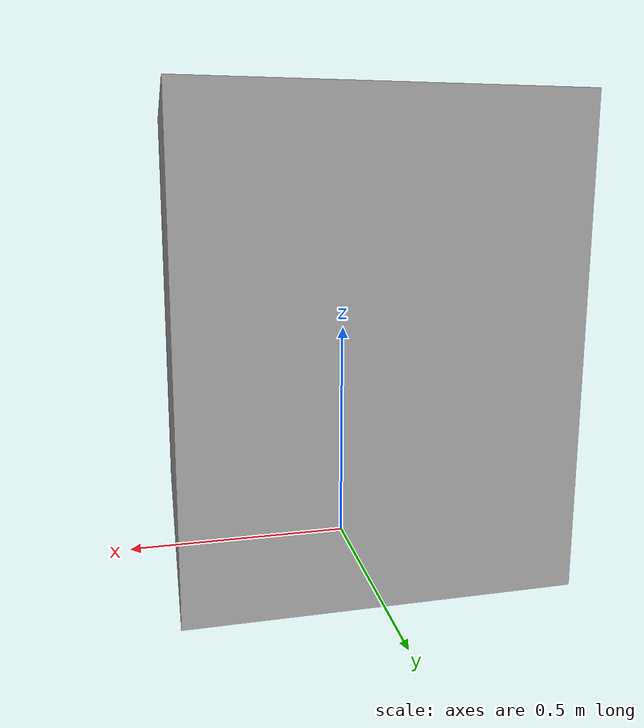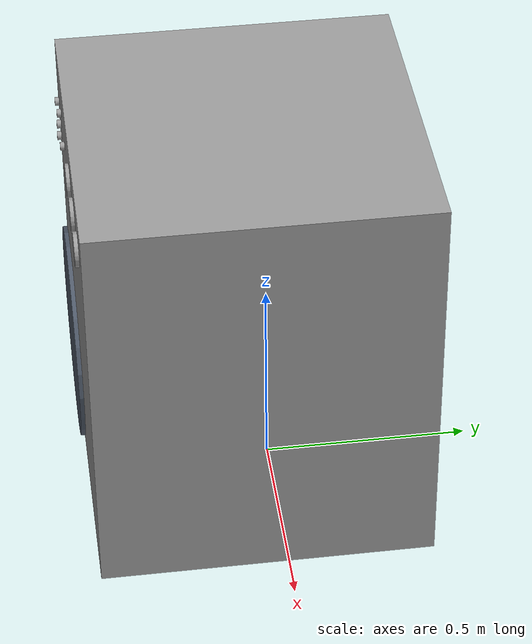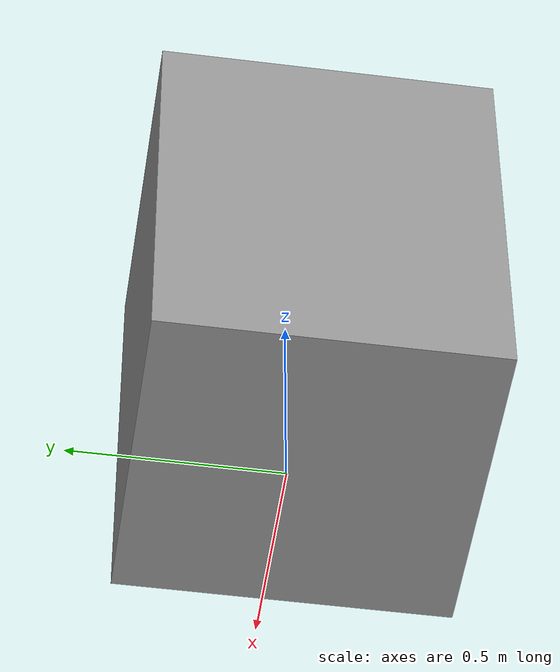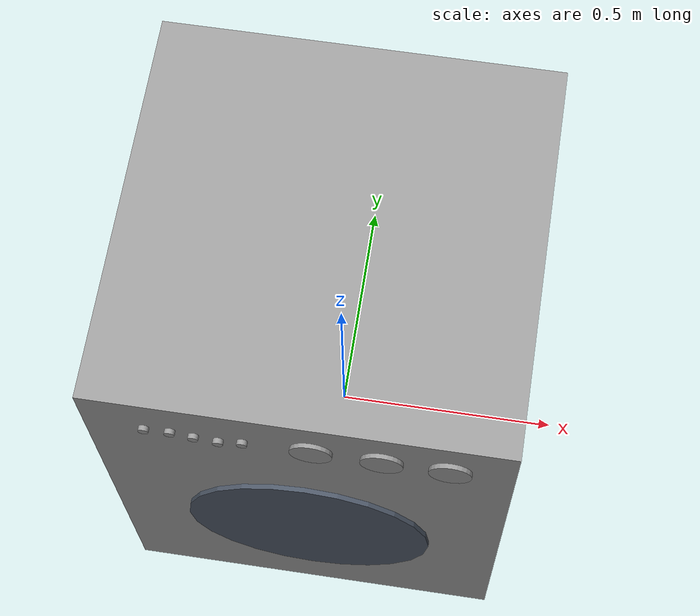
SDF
<?xml version='1.0'?>
<sdf version='1.7'>
  <model name='my_washing_machine'>
    <link name='link'>
      <inertial>
        <mass>1</mass>
        <inertia>
          <ixx>0.166667</ixx>
          <ixy>0</ixy>
          <ixz>0</ixz>
          <iyy>0.166667</iyy>
          <iyz>0</iyz>
          <izz>0.166667</izz>
        </inertia>
        <pose>0 0 0 0 -0 0</pose>
      </inertial>
      <self_collide>0</self_collide>
      <enable_wind>0</enable_wind>
      <kinematic>0</kinematic>
      <pose>-0.002708 -0.04821 0 0 -0 0</pose>
      <gravity>1</gravity>
      <visual name='visual'>
        <geometry>
          <box>
            <size>0.8 0.8 1</size>
          </box>
        </geometry>
        <material>
          <script>
            <name>Gazebo/Grey</name>
            <uri>file://media/materials/scripts/gazebo.material</uri>
          </script>
          <shader type='pixel'>
            <normal_map>__default__</normal_map>
          </shader>
          <ambient>0.9 0.9 0.9 0</ambient>
          <diffuse>0.9 0.9 0.9 1</diffuse>
          <specular>0.01 0.01 0.01 1</specular>
          <emissive>0 0 0 1</emissive>
        </material>
        <pose>0 0 0.5 0 -0 0</pose>
        <transparency>0</transparency>
        <cast_shadows>1</cast_shadows>
      </visual>
      <collision name='collision'>
        <laser_retro>0</laser_retro>
        <max_contacts>10</max_contacts>
        <pose>0 0 0.5 0 -0 0</pose>
        <geometry>
          <box>
            <size>0.8 0.8 1</size>
          </box>
        </geometry>
        <surface>
          <friction>
            <ode>
              <mu>1</mu>
              <mu2>1</mu2>
              <fdir1>0 0 0</fdir1>
              <slip1>0</slip1>
              <slip2>0</slip2>
            </ode>
            <torsional>
              <coefficient>1</coefficient>
              <patch_radius>0</patch_radius>
              <surface_radius>0</surface_radius>
              <use_patch_radius>1</use_patch_radius>
              <ode>
                <slip>0</slip>
              </ode>
            </torsional>
          </friction>
          <bounce>
            <restitution_coefficient>0</restitution_coefficient>
            <threshold>1e+06</threshold>
          </bounce>
          <contact>
            <collide_without_contact>0</collide_without_contact>
            <collide_without_contact_bitmask>1</collide_without_contact_bitmask>
            <collide_bitmask>1</collide_bitmask>
            <ode>
              <soft_cfm>0</soft_cfm>
              <soft_erp>0.2</soft_erp>
              <kp>1e+13</kp>
              <kd>1</kd>
              <max_vel>0.01</max_vel>
              <min_depth>0</min_depth>
            </ode>
            <bullet>
              <split_impulse>1</split_impulse>
              <split_impulse_penetration_threshold>-0.01</split_impulse_penetration_threshold>
              <soft_cfm>0</soft_cfm>
              <soft_erp>0.2</soft_erp>
              <kp>1e+13</kp>
              <kd>1</kd>
            </bullet>
          </contact>
        </surface>
      </collision>
    </link>
    <link name='link_0'>
      <inertial>
        <mass>1</mass>
        <inertia>
          <ixx>0.145833</ixx>
          <ixy>0</ixy>
          <ixz>0</ixz>
          <iyy>0.145833</iyy>
          <iyz>0</iyz>
          <izz>0.125</izz>
        </inertia>
        <pose>0 0 0 0 -0 0</pose>
      </inertial>
      <pose>0.004091 -0.46144 0.442681 0 -0 0</pose>
      <gravity>1</gravity>
      <self_collide>0</self_collide>
      <kinematic>0</kinematic>
      <enable_wind>0</enable_wind>
      <visual name='visual'>
        <pose>0 0 0 1.5707 -0 0</pose>
        <geometry>
          <cylinder>
            <radius>0.25</radius>
            <length>0.01</length>
          </cylinder>
        </geometry>
        <material>
          <lighting>1</lighting>
          <script>
            <uri>file://media/materials/scripts/gazebo.material</uri>
            <name>Gazebo/Grey</name>
          </script>
          <shader type='pixel'>
            <normal_map>__default__</normal_map>
          </shader>
          <ambient>0.3 0.34 0.4 1</ambient>
          <diffuse>0.3 0.34 0.4 1</diffuse>
          <specular>0.01 0.01 0.01 1</specular>
          <emissive>0 0 0 1</emissive>
        </material>
        <transparency>0</transparency>
        <cast_shadows>1</cast_shadows>
      </visual>
      <collision name='collision'>
        <laser_retro>0</laser_retro>
        <max_contacts>10</max_contacts>
        <pose>0 0 0 1.5707 -0 0</pose>
        <geometry>
          <cylinder>
            <radius>0.25</radius>
            <length>0.01</length>
          </cylinder>
        </geometry>
        <surface>
          <friction>
            <ode>
              <mu>1</mu>
              <mu2>1</mu2>
              <fdir1>0 0 0</fdir1>
              <slip1>0</slip1>
              <slip2>0</slip2>
            </ode>
            <torsional>
              <coefficient>1</coefficient>
              <patch_radius>0</patch_radius>
              <surface_radius>0</surface_radius>
              <use_patch_radius>1</use_patch_radius>
              <ode>
                <slip>0</slip>
              </ode>
            </torsional>
          </friction>
          <bounce>
            <restitution_coefficient>0</restitution_coefficient>
            <threshold>1e+06</threshold>
          </bounce>
          <contact>
            <collide_without_contact>0</collide_without_contact>
            <collide_without_contact_bitmask>1</collide_without_contact_bitmask>
            <collide_bitmask>1</collide_bitmask>
            <ode>
              <soft_cfm>0</soft_cfm>
              <soft_erp>0.2</soft_erp>
              <kp>1e+13</kp>
              <kd>1</kd>
              <max_vel>0.01</max_vel>
              <min_depth>0</min_depth>
            </ode>
            <bullet>
              <split_impulse>1</split_impulse>
              <split_impulse_penetration_threshold>-0.01</split_impulse_penetration_threshold>
              <soft_cfm>0</soft_cfm>
              <soft_erp>0.2</soft_erp>
              <kp>1e+13</kp>
              <kd>1</kd>
            </bullet>
          </contact>
        </surface>
      </collision>
    </link>
    <link name='link_0_clone'>
      <inertial>
        <mass>1</mass>
        <inertia>
          <ixx>0.145833</ixx>
          <ixy>0</ixy>
          <ixz>0</ixz>
          <iyy>0.145833</iyy>
          <iyz>0</iyz>
          <izz>0.125</izz>
        </inertia>
        <pose>0 0 0 0 -0 0</pose>
      </inertial>
      <pose>0.277824 -0.452536 0.894004 0 -0 0</pose>
      <gravity>1</gravity>
      <self_collide>0</self_collide>
      <kinematic>0</kinematic>
      <enable_wind>0</enable_wind>
      <visual name='visual'>
        <pose>0 0 0 1.5707 -0 0</pose>
        <geometry>
          <cylinder>
            <radius>0.04</radius>
            <length>0.01</length>
          </cylinder>
        </geometry>
        <material>
          <lighting>1</lighting>
          <script>
            <uri>file://media/materials/scripts/gazebo.material</uri>
            <name>Gazebo/Grey</name>
          </script>
          <shader type='pixel'>
            <normal_map>__default__</normal_map>
          </shader>
          <ambient>0.8 0.8 0.8 1</ambient>
          <diffuse>0.8 0.8 0.8 1</diffuse>
          <specular>0.01 0.01 0.01 1</specular>
          <emissive>0 0 0 1</emissive>
        </material>
        <transparency>0</transparency>
        <cast_shadows>1</cast_shadows>
      </visual>
      <collision name='collision'>
        <laser_retro>0</laser_retro>
        <max_contacts>10</max_contacts>
        <pose>0 0 0 1.5707 -0 0</pose>
        <geometry>
          <cylinder>
            <radius>0.04</radius>
            <length>0.01</length>
          </cylinder>
        </geometry>
        <surface>
          <friction>
            <ode>
              <mu>1</mu>
              <mu2>1</mu2>
              <fdir1>0 0 0</fdir1>
              <slip1>0</slip1>
              <slip2>0</slip2>
            </ode>
            <torsional>
              <coefficient>1</coefficient>
              <patch_radius>0</patch_radius>
              <surface_radius>0</surface_radius>
              <use_patch_radius>1</use_patch_radius>
              <ode>
                <slip>0</slip>
              </ode>
            </torsional>
          </friction>
          <bounce>
            <restitution_coefficient>0</restitution_coefficient>
            <threshold>1e+06</threshold>
          </bounce>
          <contact>
            <collide_without_contact>0</collide_without_contact>
            <collide_without_contact_bitmask>1</collide_without_contact_bitmask>
            <collide_bitmask>1</collide_bitmask>
            <ode>
              <soft_cfm>0</soft_cfm>
              <soft_erp>0.2</soft_erp>
              <kp>1e+13</kp>
              <kd>1</kd>
              <max_vel>0.01</max_vel>
              <min_depth>0</min_depth>
            </ode>
            <bullet>
              <split_impulse>1</split_impulse>
              <split_impulse_penetration_threshold>-0.01</split_impulse_penetration_threshold>
              <soft_cfm>0</soft_cfm>
              <soft_erp>0.2</soft_erp>
              <kp>1e+13</kp>
              <kd>1</kd>
            </bullet>
          </contact>
        </surface>
      </collision>
    </link>
    <link name='link_0_clone_clone'>
      <inertial>
        <mass>1</mass>
        <inertia>
          <ixx>0.145833</ixx>
          <ixy>0</ixy>
          <ixz>0</ixz>
          <iyy>0.145833</iyy>
          <iyz>0</iyz>
          <izz>0.125</izz>
        </inertia>
        <pose>0 0 0 0 -0 0</pose>
      </inertial>
      <pose>0.152191 -0.452057 0.894004 0 -0 0</pose>
      <gravity>1</gravity>
      <self_collide>0</self_collide>
      <kinematic>0</kinematic>
      <enable_wind>0</enable_wind>
      <visual name='visual'>
        <pose>0 0 0 1.5707 -0 0</pose>
        <geometry>
          <cylinder>
            <radius>0.04</radius>
            <length>0.01</length>
          </cylinder>
        </geometry>
        <material>
          <lighting>1</lighting>
          <script>
            <uri>file://media/materials/scripts/gazebo.material</uri>
            <name>Gazebo/Grey</name>
          </script>
          <shader type='pixel'>
            <normal_map>__default__</normal_map>
          </shader>
          <ambient>0.8 0.8 0.8 1</ambient>
          <diffuse>0.8 0.8 0.8 1</diffuse>
          <specular>0.01 0.01 0.01 1</specular>
          <emissive>0 0 0 1</emissive>
        </material>
        <transparency>0</transparency>
        <cast_shadows>1</cast_shadows>
      </visual>
      <collision name='collision'>
        <laser_retro>0</laser_retro>
        <max_contacts>10</max_contacts>
        <pose>0 0 0 1.5707 -0 0</pose>
        <geometry>
          <cylinder>
            <radius>0.04</radius>
            <length>0.01</length>
          </cylinder>
        </geometry>
        <surface>
          <friction>
            <ode>
              <mu>1</mu>
              <mu2>1</mu2>
              <fdir1>0 0 0</fdir1>
              <slip1>0</slip1>
              <slip2>0</slip2>
            </ode>
            <torsional>
              <coefficient>1</coefficient>
              <patch_radius>0</patch_radius>
              <surface_radius>0</surface_radius>
              <use_patch_radius>1</use_patch_radius>
              <ode>
                <slip>0</slip>
              </ode>
            </torsional>
          </friction>
          <bounce>
            <restitution_coefficient>0</restitution_coefficient>
            <threshold>1e+06</threshold>
          </bounce>
          <contact>
            <collide_without_contact>0</collide_without_contact>
            <collide_without_contact_bitmask>1</collide_without_contact_bitmask>
            <collide_bitmask>1</collide_bitmask>
            <ode>
              <soft_cfm>0</soft_cfm>
              <soft_erp>0.2</soft_erp>
              <kp>1e+13</kp>
              <kd>1</kd>
              <max_vel>0.01</max_vel>
              <min_depth>0</min_depth>
            </ode>
            <bullet>
              <split_impulse>1</split_impulse>
              <split_impulse_penetration_threshold>-0.01</split_impulse_penetration_threshold>
              <soft_cfm>0</soft_cfm>
              <soft_erp>0.2</soft_erp>
              <kp>1e+13</kp>
              <kd>1</kd>
            </bullet>
          </contact>
        </surface>
      </collision>
    </link>
    <link name='link_0_clone_clone_0'>
      <inertial>
        <mass>1</mass>
        <inertia>
          <ixx>0.145833</ixx>
          <ixy>0</ixy>
          <ixz>0</ixz>
          <iyy>0.145833</iyy>
          <iyz>0</iyz>
          <izz>0.125</izz>
        </inertia>
        <pose>0 0 0 0 -0 0</pose>
      </inertial>
      <pose>0.021824 -0.451823 0.894004 0 -0 0</pose>
      <gravity>1</gravity>
      <self_collide>0</self_collide>
      <kinematic>0</kinematic>
      <enable_wind>0</enable_wind>
      <visual name='visual'>
        <pose>0 0 0 1.5707 -0 0</pose>
        <geometry>
          <cylinder>
            <radius>0.04</radius>
            <length>0.01</length>
          </cylinder>
        </geometry>
        <material>
          <lighting>1</lighting>
          <script>
            <uri>file://media/materials/scripts/gazebo.material</uri>
            <name>Gazebo/Grey</name>
          </script>
          <shader type='pixel'>
            <normal_map>__default__</normal_map>
          </shader>
          <ambient>0.8 0.8 0.8 1</ambient>
          <diffuse>0.8 0.8 0.8 1</diffuse>
          <specular>0.01 0.01 0.01 1</specular>
          <emissive>0 0 0 1</emissive>
        </material>
        <transparency>0</transparency>
        <cast_shadows>1</cast_shadows>
      </visual>
      <collision name='collision'>
        <laser_retro>0</laser_retro>
        <max_contacts>10</max_contacts>
        <pose>0 0 0 1.5707 -0 0</pose>
        <geometry>
          <cylinder>
            <radius>0.04</radius>
            <length>0.01</length>
          </cylinder>
        </geometry>
        <surface>
          <friction>
            <ode>
              <mu>1</mu>
              <mu2>1</mu2>
              <fdir1>0 0 0</fdir1>
              <slip1>0</slip1>
              <slip2>0</slip2>
            </ode>
            <torsional>
              <coefficient>1</coefficient>
              <patch_radius>0</patch_radius>
              <surface_radius>0</surface_radius>
              <use_patch_radius>1</use_patch_radius>
              <ode>
                <slip>0</slip>
              </ode>
            </torsional>
          </friction>
          <bounce>
            <restitution_coefficient>0</restitution_coefficient>
            <threshold>1e+06</threshold>
          </bounce>
          <contact>
            <collide_without_contact>0</collide_without_contact>
            <collide_without_contact_bitmask>1</collide_without_contact_bitmask>
            <collide_bitmask>1</collide_bitmask>
            <ode>
              <soft_cfm>0</soft_cfm>
              <soft_erp>0.2</soft_erp>
              <kp>1e+13</kp>
              <kd>1</kd>
              <max_vel>0.01</max_vel>
              <min_depth>0</min_depth>
            </ode>
            <bullet>
              <split_impulse>1</split_impulse>
              <split_impulse_penetration_threshold>-0.01</split_impulse_penetration_threshold>
              <soft_cfm>0</soft_cfm>
              <soft_erp>0.2</soft_erp>
              <kp>1e+13</kp>
              <kd>1</kd>
            </bullet>
          </contact>
        </surface>
      </collision>
    </link>
    <link name='link_0_clone_clone_0_clone'>
      <inertial>
        <mass>1</mass>
        <inertia>
          <ixx>0.145833</ixx>
          <ixy>0</ixy>
          <ixz>0</ixz>
          <iyy>0.145833</iyy>
          <iyz>0</iyz>
          <izz>0.125</izz>
        </inertia>
        <pose>0 0 0 0 -0 0</pose>
      </inertial>
      <pose>-0.14749 -0.45922 0.90143 0 -0 0</pose>
      <gravity>1</gravity>
      <self_collide>0</self_collide>
      <kinematic>0</kinematic>
      <enable_wind>0</enable_wind>
      <visual name='visual'>
        <pose>0 0 0 1.5707 -0 0</pose>
        <geometry>
          <cylinder>
            <radius>0.01</radius>
            <length>0.01</length>
          </cylinder>
        </geometry>
        <material>
          <lighting>1</lighting>
          <script>
            <uri>file://media/materials/scripts/gazebo.material</uri>
            <name>Gazebo/Grey</name>
          </script>
          <shader type='pixel'>
            <normal_map>__default__</normal_map>
          </shader>
          <ambient>0.8 0.8 0.8 1</ambient>
          <diffuse>0.8 0.8 0.8 1</diffuse>
          <specular>0.01 0.01 0.01 1</specular>
          <emissive>0 0 0 1</emissive>
        </material>
        <transparency>0</transparency>
        <cast_shadows>1</cast_shadows>
      </visual>
      <collision name='collision'>
        <laser_retro>0</laser_retro>
        <max_contacts>10</max_contacts>
        <pose>0 0 0 1.5707 -0 0</pose>
        <geometry>
          <cylinder>
            <radius>0.01</radius>
            <length>0.01</length>
          </cylinder>
        </geometry>
        <surface>
          <friction>
            <ode>
              <mu>1</mu>
              <mu2>1</mu2>
              <fdir1>0 0 0</fdir1>
              <slip1>0</slip1>
              <slip2>0</slip2>
            </ode>
            <torsional>
              <coefficient>1</coefficient>
              <patch_radius>0</patch_radius>
              <surface_radius>0</surface_radius>
              <use_patch_radius>1</use_patch_radius>
              <ode>
                <slip>0</slip>
              </ode>
            </torsional>
          </friction>
          <bounce>
            <restitution_coefficient>0</restitution_coefficient>
            <threshold>1e+06</threshold>
          </bounce>
          <contact>
            <collide_without_contact>0</collide_without_contact>
            <collide_without_contact_bitmask>1</collide_without_contact_bitmask>
            <collide_bitmask>1</collide_bitmask>
            <ode>
              <soft_cfm>0</soft_cfm>
              <soft_erp>0.2</soft_erp>
              <kp>1e+13</kp>
              <kd>1</kd>
              <max_vel>0.01</max_vel>
              <min_depth>0</min_depth>
            </ode>
            <bullet>
              <split_impulse>1</split_impulse>
              <split_impulse_penetration_threshold>-0.01</split_impulse_penetration_threshold>
              <soft_cfm>0</soft_cfm>
              <soft_erp>0.2</soft_erp>
              <kp>1e+13</kp>
              <kd>1</kd>
            </bullet>
          </contact>
        </surface>
      </collision>
    </link>
    <link name='link_0_clone_clone_0_clone_clone'>
      <inertial>
        <mass>1</mass>
        <inertia>
          <ixx>0.145833</ixx>
          <ixy>0</ixy>
          <ixz>0</ixz>
          <iyy>0.145833</iyy>
          <iyz>0</iyz>
          <izz>0.125</izz>
        </inertia>
        <pose>0 0 0 0 -0 0</pose>
      </inertial>
      <pose>-0.193775 -0.457102 0.90143 0 -0 0</pose>
      <gravity>1</gravity>
      <self_collide>0</self_collide>
      <kinematic>0</kinematic>
      <enable_wind>0</enable_wind>
      <visual name='visual'>
        <pose>0 0 0 1.5707 -0 0</pose>
        <geometry>
          <cylinder>
            <radius>0.01</radius>
            <length>0.01</length>
          </cylinder>
        </geometry>
        <material>
          <lighting>1</lighting>
          <script>
            <uri>file://media/materials/scripts/gazebo.material</uri>
            <name>Gazebo/Grey</name>
          </script>
          <shader type='pixel'>
            <normal_map>__default__</normal_map>
          </shader>
          <ambient>0.8 0.8 0.8 1</ambient>
          <diffuse>0.8 0.8 0.8 1</diffuse>
          <specular>0.01 0.01 0.01 1</specular>
          <emissive>0 0 0 1</emissive>
        </material>
        <transparency>0</transparency>
        <cast_shadows>1</cast_shadows>
      </visual>
      <collision name='collision'>
        <laser_retro>0</laser_retro>
        <max_contacts>10</max_contacts>
        <pose>0 0 0 1.5707 -0 0</pose>
        <geometry>
          <cylinder>
            <radius>0.01</radius>
            <length>0.01</length>
          </cylinder>
        </geometry>
        <surface>
          <friction>
            <ode>
              <mu>1</mu>
              <mu2>1</mu2>
              <fdir1>0 0 0</fdir1>
              <slip1>0</slip1>
              <slip2>0</slip2>
            </ode>
            <torsional>
              <coefficient>1</coefficient>
              <patch_radius>0</patch_radius>
              <surface_radius>0</surface_radius>
              <use_patch_radius>1</use_patch_radius>
              <ode>
                <slip>0</slip>
              </ode>
            </torsional>
          </friction>
          <bounce>
            <restitution_coefficient>0</restitution_coefficient>
            <threshold>1e+06</threshold>
          </bounce>
          <contact>
            <collide_without_contact>0</collide_without_contact>
            <collide_without_contact_bitmask>1</collide_without_contact_bitmask>
            <collide_bitmask>1</collide_bitmask>
            <ode>
              <soft_cfm>0</soft_cfm>
              <soft_erp>0.2</soft_erp>
              <kp>1e+13</kp>
              <kd>1</kd>
              <max_vel>0.01</max_vel>
              <min_depth>0</min_depth>
            </ode>
            <bullet>
              <split_impulse>1</split_impulse>
              <split_impulse_penetration_threshold>-0.01</split_impulse_penetration_threshold>
              <soft_cfm>0</soft_cfm>
              <soft_erp>0.2</soft_erp>
              <kp>1e+13</kp>
              <kd>1</kd>
            </bullet>
          </contact>
        </surface>
      </collision>
    </link>
    <link name='link_0_clone_clone_0_clone_clone_clone'>
      <inertial>
        <mass>1</mass>
        <inertia>
          <ixx>0.145833</ixx>
          <ixy>0</ixy>
          <ixz>0</ixz>
          <iyy>0.145833</iyy>
          <iyz>0</iyz>
          <izz>0.125</izz>
        </inertia>
        <pose>0 0 0 0 -0 0</pose>
      </inertial>
      <pose>-0.238107 -0.454271 0.90143 0 -0 0</pose>
      <gravity>1</gravity>
      <self_collide>0</self_collide>
      <kinematic>0</kinematic>
      <enable_wind>0</enable_wind>
      <visual name='visual'>
        <pose>0 0 0 1.5707 -0 0</pose>
        <geometry>
          <cylinder>
            <radius>0.01</radius>
            <length>0.01</length>
          </cylinder>
        </geometry>
        <material>
          <lighting>1</lighting>
          <script>
            <uri>file://media/materials/scripts/gazebo.material</uri>
            <name>Gazebo/Grey</name>
          </script>
          <shader type='pixel'>
            <normal_map>__default__</normal_map>
          </shader>
          <ambient>0.8 0.8 0.8 1</ambient>
          <diffuse>0.8 0.8 0.8 1</diffuse>
          <specular>0.01 0.01 0.01 1</specular>
          <emissive>0 0 0 1</emissive>
        </material>
        <transparency>0</transparency>
        <cast_shadows>1</cast_shadows>
      </visual>
      <collision name='collision'>
        <laser_retro>0</laser_retro>
        <max_contacts>10</max_contacts>
        <pose>0 0 0 1.5707 -0 0</pose>
        <geometry>
          <cylinder>
            <radius>0.01</radius>
            <length>0.01</length>
          </cylinder>
        </geometry>
        <surface>
          <friction>
            <ode>
              <mu>1</mu>
              <mu2>1</mu2>
              <fdir1>0 0 0</fdir1>
              <slip1>0</slip1>
              <slip2>0</slip2>
            </ode>
            <torsional>
              <coefficient>1</coefficient>
              <patch_radius>0</patch_radius>
              <surface_radius>0</surface_radius>
              <use_patch_radius>1</use_patch_radius>
              <ode>
                <slip>0</slip>
              </ode>
            </torsional>
          </friction>
          <bounce>
            <restitution_coefficient>0</restitution_coefficient>
            <threshold>1e+06</threshold>
          </bounce>
          <contact>
            <collide_without_contact>0</collide_without_contact>
            <collide_without_contact_bitmask>1</collide_without_contact_bitmask>
            <collide_bitmask>1</collide_bitmask>
            <ode>
              <soft_cfm>0</soft_cfm>
              <soft_erp>0.2</soft_erp>
              <kp>1e+13</kp>
              <kd>1</kd>
              <max_vel>0.01</max_vel>
              <min_depth>0</min_depth>
            </ode>
            <bullet>
              <split_impulse>1</split_impulse>
              <split_impulse_penetration_threshold>-0.01</split_impulse_penetration_threshold>
              <soft_cfm>0</soft_cfm>
              <soft_erp>0.2</soft_erp>
              <kp>1e+13</kp>
              <kd>1</kd>
            </bullet>
          </contact>
        </surface>
      </collision>
    </link>
    <link name='link_0_clone_clone_0_clone_clone_clone_clone'>
      <inertial>
        <mass>1</mass>
        <inertia>
          <ixx>0.145833</ixx>
          <ixy>0</ixy>
          <ixz>0</ixz>
          <iyy>0.145833</iyy>
          <iyz>0</iyz>
          <izz>0.125</izz>
        </inertia>
        <pose>0 0 0 0 -0 0</pose>
      </inertial>
      <pose>-0.286219 -0.455562 0.902135 0 -0 0</pose>
      <gravity>1</gravity>
      <self_collide>0</self_collide>
      <kinematic>0</kinematic>
      <enable_wind>0</enable_wind>
      <visual name='visual'>
        <pose>0 0 0 1.5707 -0 0</pose>
        <geometry>
          <cylinder>
            <radius>0.01</radius>
            <length>0.01</length>
          </cylinder>
        </geometry>
        <material>
          <lighting>1</lighting>
          <script>
            <uri>file://media/materials/scripts/gazebo.material</uri>
            <name>Gazebo/Grey</name>
          </script>
          <shader type='pixel'>
            <normal_map>__default__</normal_map>
          </shader>
          <ambient>0.8 0.8 0.8 1</ambient>
          <diffuse>0.8 0.8 0.8 1</diffuse>
          <specular>0.01 0.01 0.01 1</specular>
          <emissive>0 0 0 1</emissive>
        </material>
        <transparency>0</transparency>
        <cast_shadows>1</cast_shadows>
      </visual>
      <collision name='collision'>
        <laser_retro>0</laser_retro>
        <max_contacts>10</max_contacts>
        <pose>0 0 0 1.5707 -0 0</pose>
        <geometry>
          <cylinder>
            <radius>0.01</radius>
            <length>0.01</length>
          </cylinder>
        </geometry>
        <surface>
          <friction>
            <ode>
              <mu>1</mu>
              <mu2>1</mu2>
              <fdir1>0 0 0</fdir1>
              <slip1>0</slip1>
              <slip2>0</slip2>
            </ode>
            <torsional>
              <coefficient>1</coefficient>
              <patch_radius>0</patch_radius>
              <surface_radius>0</surface_radius>
              <use_patch_radius>1</use_patch_radius>
              <ode>
                <slip>0</slip>
              </ode>
            </torsional>
          </friction>
          <bounce>
            <restitution_coefficient>0</restitution_coefficient>
            <threshold>1e+06</threshold>
          </bounce>
          <contact>
            <collide_without_contact>0</collide_without_contact>
            <collide_without_contact_bitmask>1</collide_without_contact_bitmask>
            <collide_bitmask>1</collide_bitmask>
            <ode>
              <soft_cfm>0</soft_cfm>
              <soft_erp>0.2</soft_erp>
              <kp>1e+13</kp>
              <kd>1</kd>
              <max_vel>0.01</max_vel>
              <min_depth>0</min_depth>
            </ode>
            <bullet>
              <split_impulse>1</split_impulse>
              <split_impulse_penetration_threshold>-0.01</split_impulse_penetration_threshold>
              <soft_cfm>0</soft_cfm>
              <soft_erp>0.2</soft_erp>
              <kp>1e+13</kp>
              <kd>1</kd>
            </bullet>
          </contact>
        </surface>
      </collision>
    </link>
    <link name='link_0_clone_clone_0_clone_clone_clone_clone_0'>
      <inertial>
        <mass>1</mass>
        <inertia>
          <ixx>0.145833</ixx>
          <ixy>0</ixy>
          <ixz>0</ixz>
          <iyy>0.145833</iyy>
          <iyz>0</iyz>
          <izz>0.125</izz>
        </inertia>
        <pose>0 0 0 0 -0 0</pose>
      </inertial>
      <pose>-0.103977 -0.455433 0.90143 0 -0 0</pose>
      <gravity>1</gravity>
      <self_collide>0</self_collide>
      <kinematic>0</kinematic>
      <enable_wind>0</enable_wind>
      <visual name='visual'>
        <pose>0 0 0 1.5707 -0 0</pose>
        <geometry>
          <cylinder>
            <radius>0.01</radius>
            <length>0.01</length>
          </cylinder>
        </geometry>
        <material>
          <lighting>1</lighting>
          <script>
            <uri>file://media/materials/scripts/gazebo.material</uri>
            <name>Gazebo/Grey</name>
          </script>
          <shader type='pixel'>
            <normal_map>__default__</normal_map>
          </shader>
          <ambient>0.8 0.8 0.8 1</ambient>
          <diffuse>0.8 0.8 0.8 1</diffuse>
          <specular>0.01 0.01 0.01 1</specular>
          <emissive>0 0 0 1</emissive>
        </material>
        <transparency>0</transparency>
        <cast_shadows>1</cast_shadows>
      </visual>
      <collision name='collision'>
        <laser_retro>0</laser_retro>
        <max_contacts>10</max_contacts>
        <pose>0 0 0 1.5707 -0 0</pose>
        <geometry>
          <cylinder>
            <radius>0.01</radius>
            <length>0.01</length>
          </cylinder>
        </geometry>
        <surface>
          <friction>
            <ode>
              <mu>1</mu>
              <mu2>1</mu2>
              <fdir1>0 0 0</fdir1>
              <slip1>0</slip1>
              <slip2>0</slip2>
            </ode>
            <torsional>
              <coefficient>1</coefficient>
              <patch_radius>0</patch_radius>
              <surface_radius>0</surface_radius>
              <use_patch_radius>1</use_patch_radius>
              <ode>
                <slip>0</slip>
              </ode>
            </torsional>
          </friction>
          <bounce>
            <restitution_coefficient>0</restitution_coefficient>
            <threshold>1e+06</threshold>
          </bounce>
          <contact>
            <collide_without_contact>0</collide_without_contact>
            <collide_without_contact_bitmask>1</collide_without_contact_bitmask>
            <collide_bitmask>1</collide_bitmask>
            <ode>
              <soft_cfm>0</soft_cfm>
              <soft_erp>0.2</soft_erp>
              <kp>1e+13</kp>
              <kd>1</kd>
              <max_vel>0.01</max_vel>
              <min_depth>0</min_depth>
            </ode>
            <bullet>
              <split_impulse>1</split_impulse>
              <split_impulse_penetration_threshold>-0.01</split_impulse_penetration_threshold>
              <soft_cfm>0</soft_cfm>
              <soft_erp>0.2</soft_erp>
              <kp>1e+13</kp>
              <kd>1</kd>
            </bullet>
          </contact>
        </surface>
      </collision>
    </link>
    <static>1</static>
    <allow_auto_disable>1</allow_auto_disable>
  </model>
</sdf>
